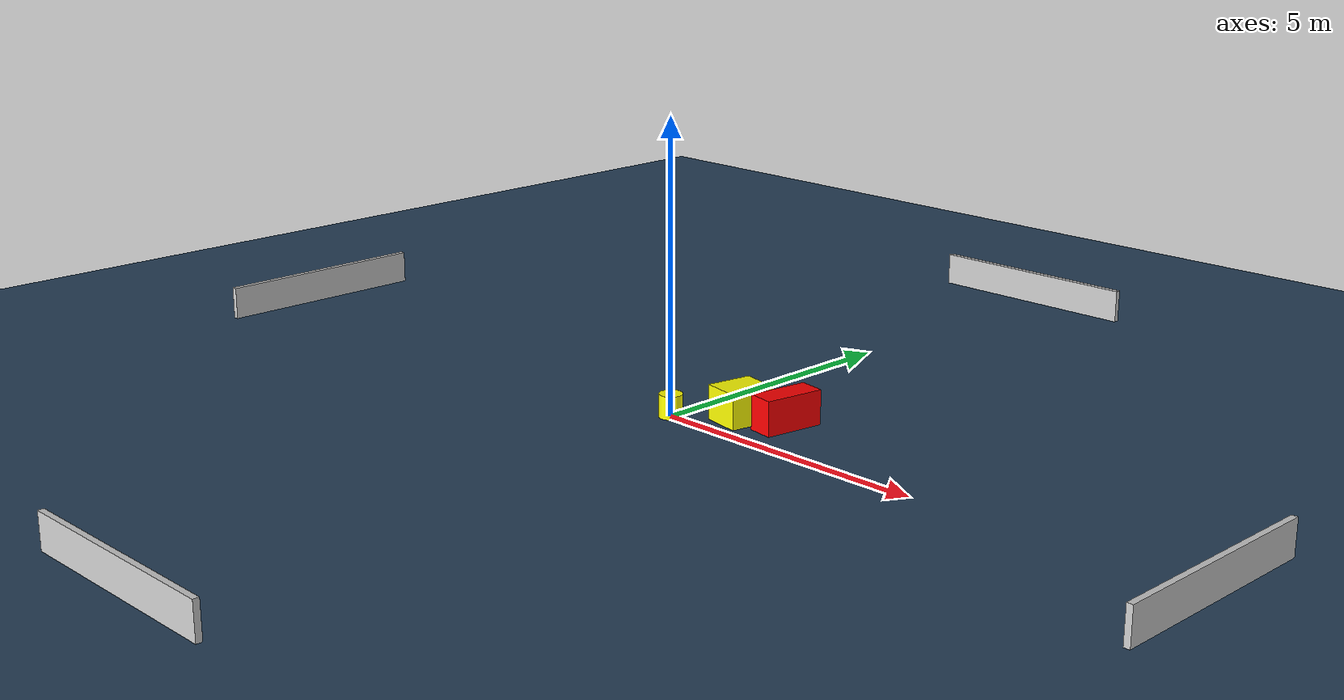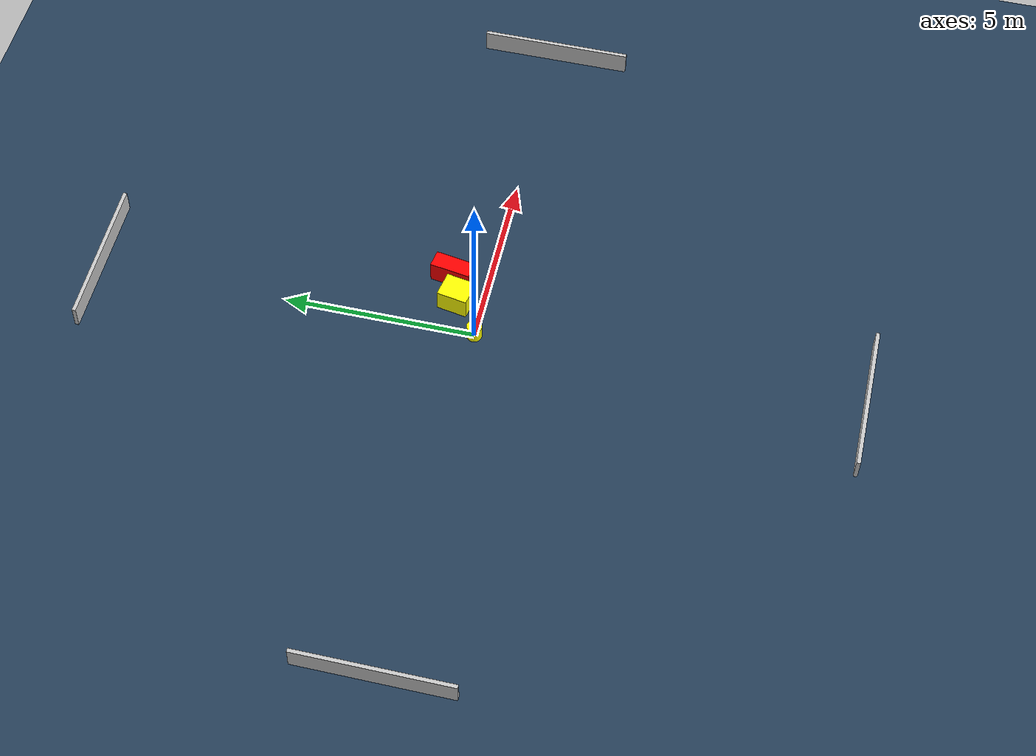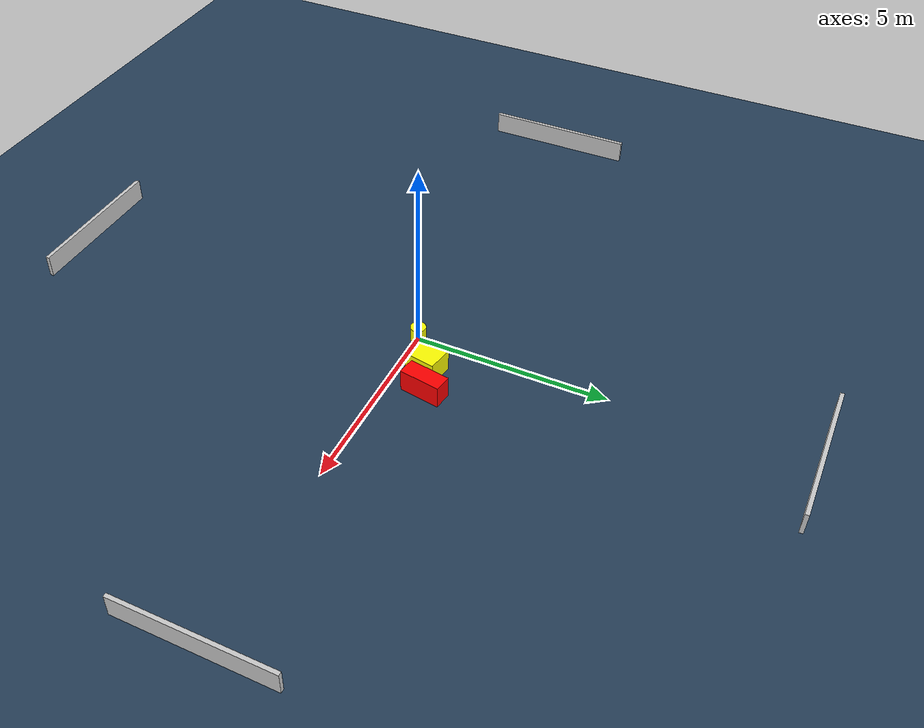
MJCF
<?xml version="1.0" ?>
<mujoco model="generated_environment">
  <option timestep="0.01" integrator="RK4" cone="elliptic"/>
  <default>
    <geom density="1"/>
  </default>
  <asset>
    <texture builtin="gradient" height="3072" name="skybox" rgb1="0.3 0.5 0.7" rgb2="0 0 0" type="skybox" width="512"/>
    <texture builtin="checker" height="300" name="groundplane" rgb1="0.2 0.3 0.4" rgb2="0.1 0.2 0.3" type="2d" width="300"/>
    <material name="groundplane" reflectance="0.2" texrepeat="5 5" texture="groundplane"/>
  </asset>
  <worldbody>
    <light dir="0 0 -1" directional="true" pos="0 0 1.5"/>
    <geom condim="3" friction="0.5 0.005 0.001" material="groundplane" name="floor" pos="0 0 0" size="0 0 0.05" type="plane"/>
    <body name="walls">
      <geom name="wall_1" condim="4" pos="-10.0 0.0 0.3" rgba="0.800000011920929 0.800000011920929 0.800000011920929 1.0" size="0.05 2.0 0.3" type="box"/>
      <geom name="wall_2" condim="4" pos="10.0 0.0 0.3" rgba="0.800000011920929 0.800000011920929 0.800000011920929 1.0" size="0.05 2.0 0.3" type="box"/>
      <geom name="wall_3" condim="4" pos="0.0 -10.0 0.3" rgba="0.800000011920929 0.800000011920929 0.800000011920929 1.0" size="2.0 0.05 0.3" type="box"/>
      <geom name="wall_4" condim="4" pos="0.0 10.0 0.3" rgba="0.800000011920929 0.800000011920929 0.800000011920929 1.0" size="2.0 0.05 0.3" type="box"/>
    </body>
    <body name="robot">
      <joint name="joint_x" type="slide" pos="0 0 0" axis="1 0 0"/>
      <joint name="joint_y" type="slide" pos="0 0 0" axis="0 1 0"/>
      <geom name="robot" type="cylinder" pos="0.0 0.0 0.2" size="0.2 0.2 0.0" mass="5.0" friction="1.0 0.005 0.0001" condim="4" rgba="1.0 1.0 0.0 1.0"/>
    </body>
    <body name="obstacle_1_movable">
      <geom name="obstacle_1_movable" condim="4" pos="0.9335690036957071 0.6861116608121818 0.3" euler="0 0 259.7835597513344" friction="0.0 0.005 0.001" rgba="1.0 1.0 0.0 1.0" size="0.4023556983099986 0.340767101377105 0.3" type="box" mass="0.1"/>
      <joint type="free"/>
    </body>
    <body name="obstacle_2_static">
      <geom name="obstacle_2_static" condim="4" pos="1.6736422410637235 0.9672233057077223 0.3" euler="0 0 170.73149655692472" friction="0.0 0.005 0.001" rgba="1.0 0.0 0.0 1.0" size="0.2273840783348181 0.5324005728276857 0.3" type="box"/>
    </body>
  </worldbody>
  <actuator>
    <motor name="actuator_x" joint="joint_x" gear="1" ctrlrange="-1 1"/>
    <motor name="actuator_y" joint="joint_y" gear="1" ctrlrange="-1 1"/>
  </actuator>
</mujoco>
